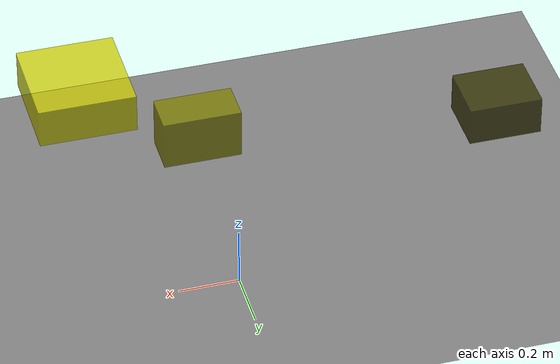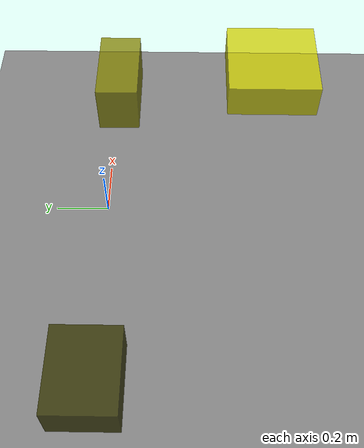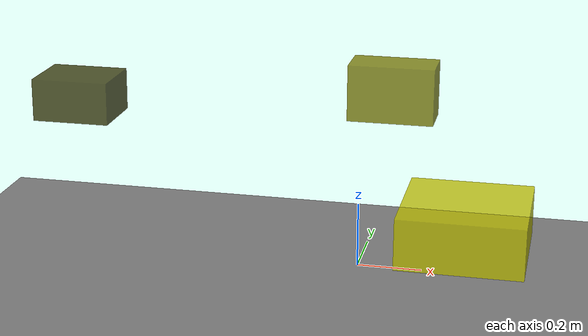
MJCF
<?xml version="1.0"?>
<mujoco model="obstacle_scene">
  <compiler angle="radian" coordinate="local"/>
  <option timestep="0.001" gravity="0 0 -9.81"/>

  <asset>
    <material name="obstacle_mat" rgba="0.8 0.8 0.0 0.8"/>
    <material name="ground_mat" rgba="0.5 0.5 0.5 1"/>
  </asset>

  <worldbody>
    <!-- Ground plane -->
    <geom name="ground" type="plane" size="3 3 0.1" material="ground_mat"/>

    <!-- Obstacles -->
    <body name="obstacle_0" pos="-0.875116 -0.048075 0.509978">
      <geom name="obs_0" type="box" size="0.119209 0.098514 0.065202" rgba="0.2 0.2 0.0 0.8"/>
    </body>
    <body name="obstacle_1" pos="0.109700 -0.082020 0.593232">
      <geom name="obs_1" type="box" size="0.125968 0.065812 0.083410" rgba="0.5 0.5 0.0 0.8"/>
    </body>
    <body name="obstacle_2" pos="0.381768 -0.626131 0.390159">
      <geom name="obs_2" type="box" size="0.163150 0.167224 0.067753" rgba="0.8 0.8 0.0 0.8"/>
    </body>
  </worldbody>
</mujoco>
